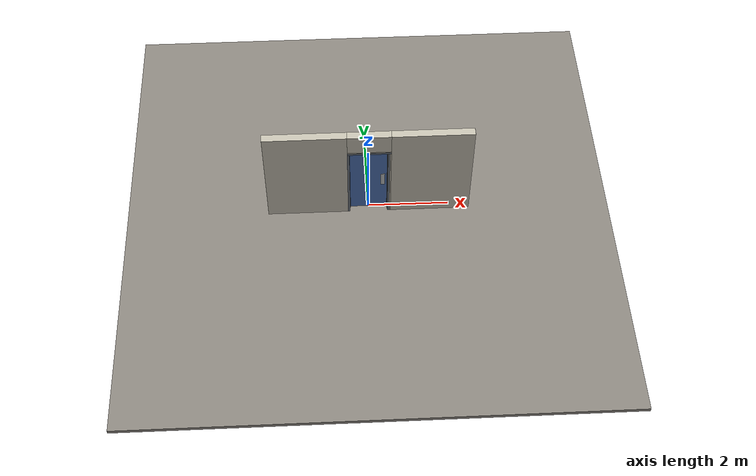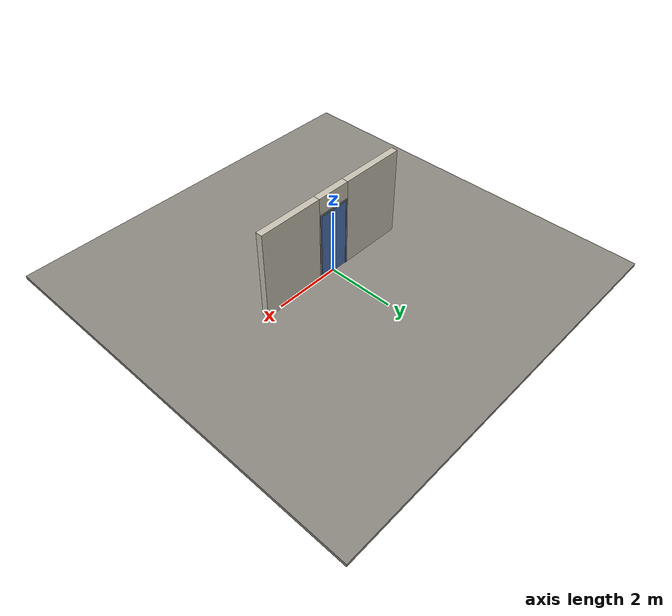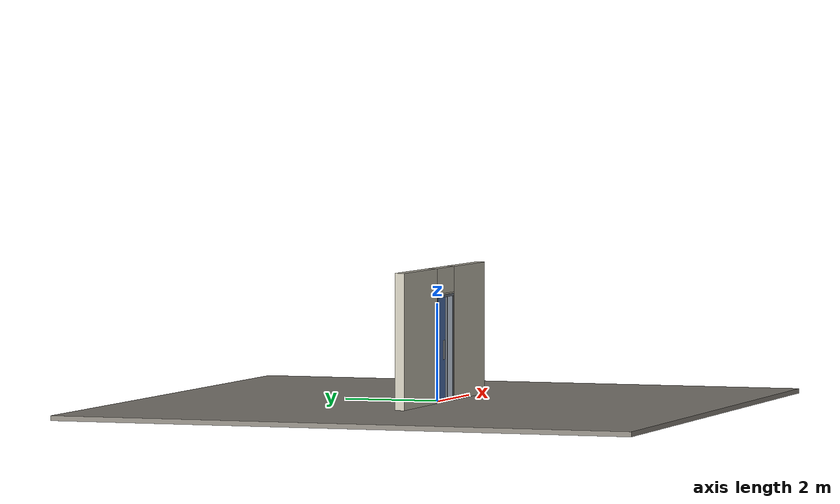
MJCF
<?xml version="1.0" ?>
<mujoco model="db0245_swing_single_minimal">
  <compiler angle="radian" meshdir="../../hardware" texturedir="../../textures" autolimits="true" inertiafromgeom="false"/>
  <option timestep="0.002" integrator="implicitfast" cone="elliptic" impratio="10" noslip_iterations="3">
    <flag multiccd="enable"/>
  </option>
  <size memory="16M"/>
  <default>
    <geom condim="4" solref="0.005 1" solimp="0.95 0.99 0.001"/>
    <joint solreflimit="0.005 1" solimplimit="0.95 0.99 0.001"/>
    <tendon solreflimit="0.005 1"/>
    <equality solref="0.002 1"/>
  </default>
  <visual>
    <headlight ambient="0.4 0.4 0.4" diffuse="0.7 0.7 0.7" specular="0.2 0.2 0.2"/>
    <quality shadowsize="4096"/>
    <map znear="0.01" zfar="60"/>
  </visual>
  <asset>
    <material name="mat_floor" rgba="0.55 0.53 0.5 1" specular="0.2" shininess="0.15" reflectance="0"/>
    <material name="mat_wall" rgba="0.78 0.76 0.7 1" specular="0.2" shininess="0.1" reflectance="0"/>
    <material name="mat_leaf" rgba="0.3 0.45 0.7 1" specular="0.23" shininess="0.43" reflectance="0.02"/>
    <material name="mat_hinge" rgba="0.65 0.66 0.68 1" specular="0.74" shininess="0.5" reflectance="0.36"/>
    <material name="mat_op_stainless" rgba="0.75 0.76 0.77 1" specular="0.8" shininess="0.65" reflectance="0.4"/>
    <material name="mat_frame" rgba="0.45 0.48 0.52 1" specular="0.32" shininess="0.6" reflectance="0.08"/>
    <material name="mat_seal" rgba="0.1 0.1 0.1 1" specular="0.2" shininess="0.1" reflectance="0"/>
    <material name="mat_closer" rgba="0.22 0.17 0.13 1" specular="0.8" shininess="0.6" reflectance="0.4"/>
    <material name="mat_bumper_stop" rgba="0.08 0.08 0.08 1" specular="0.2" shininess="0.1" reflectance="0"/>
    <material name="mat_stop_base" rgba="0.9 0.9 0.92 1" specular="0.8" shininess="0.9" reflectance="0.4"/>
    <texture name="skybox" type="skybox" builtin="gradient" rgb1="0.6 0.7 0.85" rgb2="0.9 0.92 0.95" width="256" height="256"/>
  </asset>
  <worldbody>
    <light name="sun" pos="1.5 -2.5 4" dir="-0.3 0.5 -0.8" directional="true" diffuse="0.8 0.8 0.8" specular="0.3 0.3 0.3" castshadow="true"/>
    <light name="fill" pos="-1.5 2.5 3" dir="0.3 -0.5 -0.7" directional="true" diffuse="0.35 0.35 0.4" castshadow="false"/>
    <camera name="robot_view" pos="0 -2.708813 1.812087" xyaxes="1 0 0 0 0.26963 0.962964" fovy="52"/>
    <camera name="far_view" pos="0 2.566812 1.812087" xyaxes="-1 0 0 0 -0.26963 0.962964" fovy="52"/>
    <camera name="iso" pos="2.004737 -2.286763 2.234138" xyaxes="0.741536 0.670913 0 -0.242917 0.268487 0.932151" fovy="46"/>
    <camera name="detail_handle" pos="0.5335 -0.871 1.32" xyaxes="0.97561 0.219512 0 -0.070934 0.315262 0.94635" fovy="38"/>
    <geom name="floor" type="box" size="6 6 0.05" pos="0 0 -0.05" material="mat_floor" group="0" contype="1" conaffinity="1" friction="0.8 0.005 0.0001" density="2400"/>
    <geom name="wall_left" type="box" size="0.99475 0.1 1.3735" pos="-1.50525 -0.071 1.3735" material="mat_wall" group="0" contype="1" conaffinity="1" friction="0.6 0.005 0.0001" density="800"/>
    <geom name="wall_right" type="box" size="0.97975 0.1 1.3735" pos="1.52025 -0.071 1.3735" material="mat_wall" group="0" contype="1" conaffinity="1" friction="0.6 0.005 0.0001" density="800"/>
    <geom name="wall_header" type="box" size="0.5255 0.1 0.26" pos="0.015 -0.071 2.487" material="mat_wall" group="0" contype="1" conaffinity="1" friction="0.6 0.005 0.0001" density="800"/>
    <geom name="jamb_hinge" type="box" size="0.025 0.1 1.0735" pos="-0.4855 -0.071 1.0735" material="mat_frame" group="0" contype="1" conaffinity="1" friction="0.6 0.005 0.0001" density="300"/>
    <geom name="jamb_strike" type="box" size="0.025 0.1 1.0735" pos="0.4855 -0.071 1.0735" material="mat_frame" group="0" contype="1" conaffinity="1" friction="0.6 0.005 0.0001" density="300"/>
    <geom name="stud_strike" type="box" size="0.015 0.1 1.0735" pos="0.5255 -0.071 1.0735" material="mat_wall" group="0" contype="1" conaffinity="1" friction="0.6 0.005 0.0001" density="500"/>
    <geom name="jamb_head" type="box" size="0.5255 0.1 0.025" pos="0.015 -0.071 2.172" material="mat_frame" group="0" contype="1" conaffinity="1" friction="0.6 0.005 0.0001" density="300"/>
    <geom name="head_stud" type="box" size="0.5255 0.1 0.015" pos="0.015 -0.071 2.212" material="mat_wall" group="0" contype="1" conaffinity="1" friction="0.6 0.005 0.0001" density="500"/>
    <geom name="stop_hinge" type="box" size="0.0055 0.016 1.0735" pos="-0.455 -0.0385 1.0735" material="mat_frame" group="0" contype="1" conaffinity="1" friction="0.6 0.005 0.0001" density="300"/>
    <geom name="stop_strike" type="box" size="0.0055 0.016 1.0735" pos="0.455 -0.0385 1.0735" material="mat_frame" group="0" contype="1" conaffinity="1" friction="0.6 0.005 0.0001" density="300"/>
    <geom name="stop_head" type="box" size="0.4605 0.016 0.0055" pos="0 -0.0385 2.1415" material="mat_frame" group="0" contype="1" conaffinity="1" friction="0.6 0.005 0.0001" density="300"/>
    <site name="approach_point" pos="0 -1.5 0" quat="1 0 0 0" size="0.05" rgba="0.2 0.9 0.2 0.5" group="4"/>
    <site name="goal_point" pos="0 1.5 0" quat="1 0 0 0" size="0.05" rgba="0.2 0.9 0.2 0.5" group="4"/>
    <site name="door_plane_center" pos="0 0 1.0735" quat="1 0 0 0" size="0.02" rgba="0.2 0.9 0.2 0.5" group="4"/>
    <body name="leaf" pos="-0.4605 0 0">
      <inertial pos="0.464788 -0.00031 1.07551" mass="40.245131" quat="0.500251 0.499469 -0.500516 0.499763" diaginertia="2.837649743 15.079831095 17.904123426"/>
      <joint name="leaf_hinge" type="hinge" axis="0 0 1" pos="0.003 0.029 0" limited="true" range="0 1.570796" solreflimit="0.02 1" damping="10.268966" frictionloss="2.759759" stiffness="11.796564" springref="-1.815783" armature="0.02"/>
      <geom name="leaf_slab" type="box" size="0.457 0.022 1.067" pos="0.46 0 1.076" material="mat_leaf" group="0" contype="1" conaffinity="1" friction="0.4 0.005 0.0001" density="1"/>
      <geom name="leaf_push_plate_n" type="box" size="0.05 0.0008 0.2" pos="0.812 -0.0228 1.04" material="mat_op_stainless" group="1" contype="0" conaffinity="0" density="7900"/>
      <site name="leaf_push_plate_push_n" pos="0.812 -0.022 1.04" quat="1 0 0 0" size="0.012" rgba="0.2 0.9 0.2 0.5" group="4"/>
      <site name="leaf_edge_mid" pos="0.917 0 1.067" quat="1 0 0 0" size="0.02" rgba="0.2 0.9 0.2 0.5" group="4"/>
    </body>
  </worldbody>
  <sensor>
    <jointpos name="leaf_hinge_pos" joint="leaf_hinge"/>
    <jointvel name="leaf_hinge_vel" joint="leaf_hinge"/>
  </sensor>
</mujoco>
